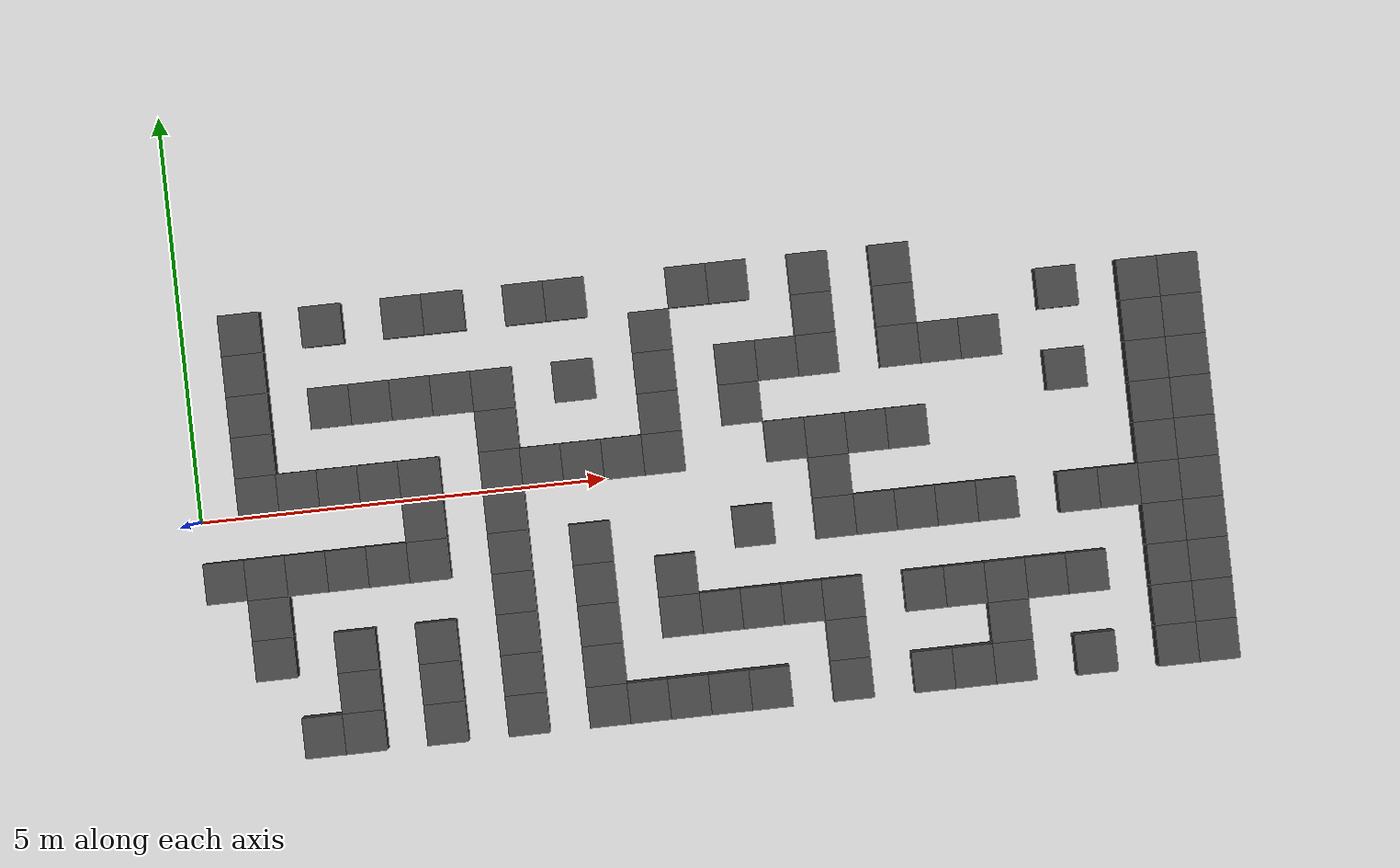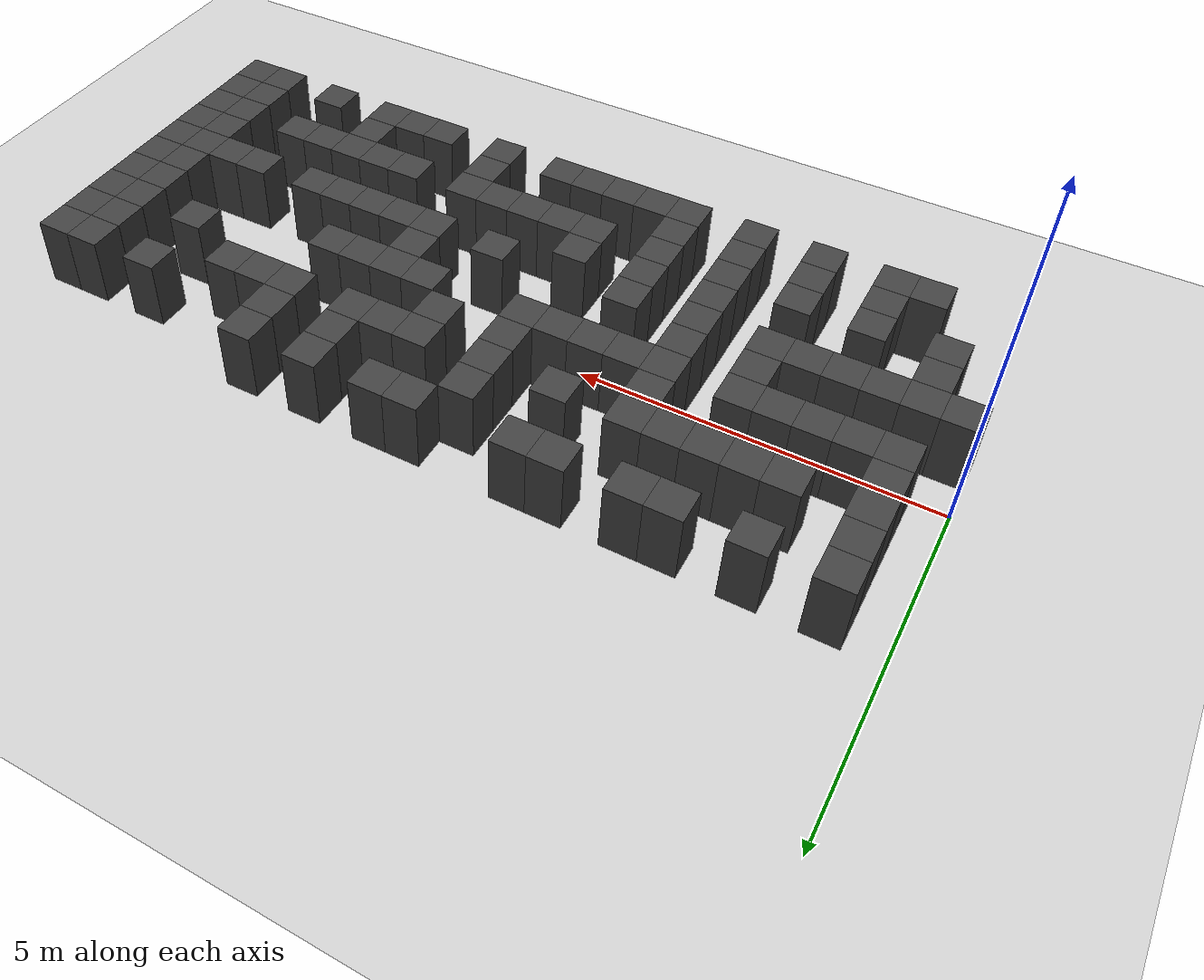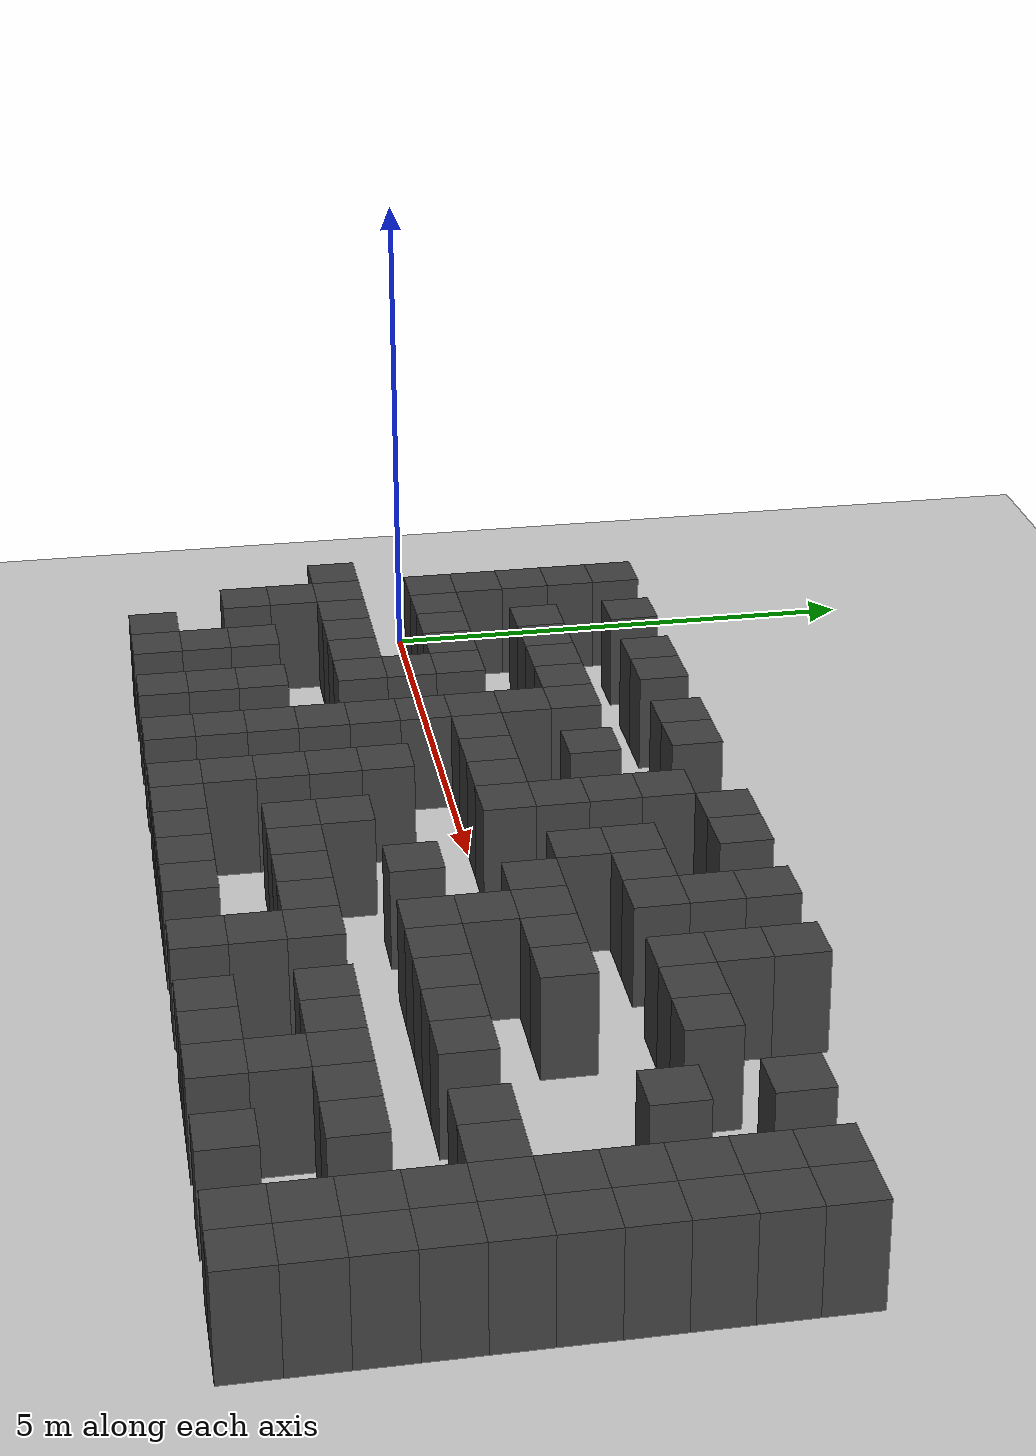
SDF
<sdf version="1.7">
 <world name="map_16884">
  <model name="ground_plane">
   <static>true</static>
   <link name="link">
    <collision name="collision">
     <geometry><plane><normal>0 0 1</normal><size>200 200</size></plane></geometry>
    </collision>
    <visual name="visual">
     <geometry><plane><normal>0 0 1</normal><size>200 200</size></plane></geometry>
     <material><ambient>0.8 0.8 0.8 1</ambient><diffuse>0.8 0.8 0.8 1</diffuse></material>
    </visual>
   </link>
  </model>
  <model name="maze_environment">
   <static>true</static>
   <link name="wall_515">
    <pose>0.750 2.250 0.500 0 0 0</pose>
    <collision name="col"><geometry><box><size>0.5 0.5 1.0</size></box></geometry></collision>
    <visual name="vis">
     <geometry><box><size>0.5 0.5 1.0</size></box></geometry>
     <material><ambient>0.15 0.15 0.15 1</ambient><diffuse>0.25 0.25 0.25 1</diffuse></material>
    </visual>
   </link>
   <link name="wall_516">
    <pose>1.750 2.250 0.500 0 0 0</pose>
    <collision name="col"><geometry><box><size>0.5 0.5 1.0</size></box></geometry></collision>
    <visual name="vis">
     <geometry><box><size>0.5 0.5 1.0</size></box></geometry>
     <material><ambient>0.15 0.15 0.15 1</ambient><diffuse>0.25 0.25 0.25 1</diffuse></material>
    </visual>
   </link>
   <link name="wall_517">
    <pose>2.750 2.250 0.500 0 0 0</pose>
    <collision name="col"><geometry><box><size>0.5 0.5 1.0</size></box></geometry></collision>
    <visual name="vis">
     <geometry><box><size>0.5 0.5 1.0</size></box></geometry>
     <material><ambient>0.15 0.15 0.15 1</ambient><diffuse>0.25 0.25 0.25 1</diffuse></material>
    </visual>
   </link>
   <link name="wall_518">
    <pose>3.250 2.250 0.500 0 0 0</pose>
    <collision name="col"><geometry><box><size>0.5 0.5 1.0</size></box></geometry></collision>
    <visual name="vis">
     <geometry><box><size>0.5 0.5 1.0</size></box></geometry>
     <material><ambient>0.15 0.15 0.15 1</ambient><diffuse>0.25 0.25 0.25 1</diffuse></material>
    </visual>
   </link>
   <link name="wall_519">
    <pose>4.250 2.250 0.500 0 0 0</pose>
    <collision name="col"><geometry><box><size>0.5 0.5 1.0</size></box></geometry></collision>
    <visual name="vis">
     <geometry><box><size>0.5 0.5 1.0</size></box></geometry>
     <material><ambient>0.15 0.15 0.15 1</ambient><diffuse>0.25 0.25 0.25 1</diffuse></material>
    </visual>
   </link>
   <link name="wall_520">
    <pose>4.750 2.250 0.500 0 0 0</pose>
    <collision name="col"><geometry><box><size>0.5 0.5 1.0</size></box></geometry></collision>
    <visual name="vis">
     <geometry><box><size>0.5 0.5 1.0</size></box></geometry>
     <material><ambient>0.15 0.15 0.15 1</ambient><diffuse>0.25 0.25 0.25 1</diffuse></material>
    </visual>
   </link>
   <link name="wall_521">
    <pose>6.250 2.250 0.500 0 0 0</pose>
    <collision name="col"><geometry><box><size>0.5 0.5 1.0</size></box></geometry></collision>
    <visual name="vis">
     <geometry><box><size>0.5 0.5 1.0</size></box></geometry>
     <material><ambient>0.15 0.15 0.15 1</ambient><diffuse>0.25 0.25 0.25 1</diffuse></material>
    </visual>
   </link>
   <link name="wall_522">
    <pose>6.750 2.250 0.500 0 0 0</pose>
    <collision name="col"><geometry><box><size>0.5 0.5 1.0</size></box></geometry></collision>
    <visual name="vis">
     <geometry><box><size>0.5 0.5 1.0</size></box></geometry>
     <material><ambient>0.15 0.15 0.15 1</ambient><diffuse>0.25 0.25 0.25 1</diffuse></material>
    </visual>
   </link>
   <link name="wall_523">
    <pose>7.750 2.250 0.500 0 0 0</pose>
    <collision name="col"><geometry><box><size>0.5 0.5 1.0</size></box></geometry></collision>
    <visual name="vis">
     <geometry><box><size>0.5 0.5 1.0</size></box></geometry>
     <material><ambient>0.15 0.15 0.15 1</ambient><diffuse>0.25 0.25 0.25 1</diffuse></material>
    </visual>
   </link>
   <link name="wall_524">
    <pose>8.750 2.250 0.500 0 0 0</pose>
    <collision name="col"><geometry><box><size>0.5 0.5 1.0</size></box></geometry></collision>
    <visual name="vis">
     <geometry><box><size>0.5 0.5 1.0</size></box></geometry>
     <material><ambient>0.15 0.15 0.15 1</ambient><diffuse>0.25 0.25 0.25 1</diffuse></material>
    </visual>
   </link>
   <link name="wall_538">
    <pose>0.750 1.750 0.500 0 0 0</pose>
    <collision name="col"><geometry><box><size>0.5 0.5 1.0</size></box></geometry></collision>
    <visual name="vis">
     <geometry><box><size>0.5 0.5 1.0</size></box></geometry>
     <material><ambient>0.15 0.15 0.15 1</ambient><diffuse>0.25 0.25 0.25 1</diffuse></material>
    </visual>
   </link>
   <link name="wall_539">
    <pose>5.750 1.750 0.500 0 0 0</pose>
    <collision name="col"><geometry><box><size>0.5 0.5 1.0</size></box></geometry></collision>
    <visual name="vis">
     <geometry><box><size>0.5 0.5 1.0</size></box></geometry>
     <material><ambient>0.15 0.15 0.15 1</ambient><diffuse>0.25 0.25 0.25 1</diffuse></material>
    </visual>
   </link>
   <link name="wall_540">
    <pose>7.750 1.750 0.500 0 0 0</pose>
    <collision name="col"><geometry><box><size>0.5 0.5 1.0</size></box></geometry></collision>
    <visual name="vis">
     <geometry><box><size>0.5 0.5 1.0</size></box></geometry>
     <material><ambient>0.15 0.15 0.15 1</ambient><diffuse>0.25 0.25 0.25 1</diffuse></material>
    </visual>
   </link>
   <link name="wall_541">
    <pose>8.750 1.750 0.500 0 0 0</pose>
    <collision name="col"><geometry><box><size>0.5 0.5 1.0</size></box></geometry></collision>
    <visual name="vis">
     <geometry><box><size>0.5 0.5 1.0</size></box></geometry>
     <material><ambient>0.15 0.15 0.15 1</ambient><diffuse>0.25 0.25 0.25 1</diffuse></material>
    </visual>
   </link>
   <link name="wall_542">
    <pose>10.750 1.750 0.500 0 0 0</pose>
    <collision name="col"><geometry><box><size>0.5 0.5 1.0</size></box></geometry></collision>
    <visual name="vis">
     <geometry><box><size>0.5 0.5 1.0</size></box></geometry>
     <material><ambient>0.15 0.15 0.15 1</ambient><diffuse>0.25 0.25 0.25 1</diffuse></material>
    </visual>
   </link>
   <link name="wall_543">
    <pose>11.750 1.750 0.500 0 0 0</pose>
    <collision name="col"><geometry><box><size>0.5 0.5 1.0</size></box></geometry></collision>
    <visual name="vis">
     <geometry><box><size>0.5 0.5 1.0</size></box></geometry>
     <material><ambient>0.15 0.15 0.15 1</ambient><diffuse>0.25 0.25 0.25 1</diffuse></material>
    </visual>
   </link>
   <link name="wall_544">
    <pose>12.250 1.750 0.500 0 0 0</pose>
    <collision name="col"><geometry><box><size>0.5 0.5 1.0</size></box></geometry></collision>
    <visual name="vis">
     <geometry><box><size>0.5 0.5 1.0</size></box></geometry>
     <material><ambient>0.15 0.15 0.15 1</ambient><diffuse>0.25 0.25 0.25 1</diffuse></material>
    </visual>
   </link>
   <link name="wall_560">
    <pose>0.750 1.250 0.500 0 0 0</pose>
    <collision name="col"><geometry><box><size>0.5 0.5 1.0</size></box></geometry></collision>
    <visual name="vis">
     <geometry><box><size>0.5 0.5 1.0</size></box></geometry>
     <material><ambient>0.15 0.15 0.15 1</ambient><diffuse>0.25 0.25 0.25 1</diffuse></material>
    </visual>
   </link>
   <link name="wall_561">
    <pose>1.750 1.250 0.500 0 0 0</pose>
    <collision name="col"><geometry><box><size>0.5 0.5 1.0</size></box></geometry></collision>
    <visual name="vis">
     <geometry><box><size>0.5 0.5 1.0</size></box></geometry>
     <material><ambient>0.15 0.15 0.15 1</ambient><diffuse>0.25 0.25 0.25 1</diffuse></material>
    </visual>
   </link>
   <link name="wall_562">
    <pose>2.250 1.250 0.500 0 0 0</pose>
    <collision name="col"><geometry><box><size>0.5 0.5 1.0</size></box></geometry></collision>
    <visual name="vis">
     <geometry><box><size>0.5 0.5 1.0</size></box></geometry>
     <material><ambient>0.15 0.15 0.15 1</ambient><diffuse>0.25 0.25 0.25 1</diffuse></material>
    </visual>
   </link>
   <link name="wall_563">
    <pose>2.750 1.250 0.500 0 0 0</pose>
    <collision name="col"><geometry><box><size>0.5 0.5 1.0</size></box></geometry></collision>
    <visual name="vis">
     <geometry><box><size>0.5 0.5 1.0</size></box></geometry>
     <material><ambient>0.15 0.15 0.15 1</ambient><diffuse>0.25 0.25 0.25 1</diffuse></material>
    </visual>
   </link>
   <link name="wall_564">
    <pose>3.250 1.250 0.500 0 0 0</pose>
    <collision name="col"><geometry><box><size>0.5 0.5 1.0</size></box></geometry></collision>
    <visual name="vis">
     <geometry><box><size>0.5 0.5 1.0</size></box></geometry>
     <material><ambient>0.15 0.15 0.15 1</ambient><diffuse>0.25 0.25 0.25 1</diffuse></material>
    </visual>
   </link>
   <link name="wall_565">
    <pose>3.750 1.250 0.500 0 0 0</pose>
    <collision name="col"><geometry><box><size>0.5 0.5 1.0</size></box></geometry></collision>
    <visual name="vis">
     <geometry><box><size>0.5 0.5 1.0</size></box></geometry>
     <material><ambient>0.15 0.15 0.15 1</ambient><diffuse>0.25 0.25 0.25 1</diffuse></material>
    </visual>
   </link>
   <link name="wall_566">
    <pose>4.750 1.250 0.500 0 0 0</pose>
    <collision name="col"><geometry><box><size>0.5 0.5 1.0</size></box></geometry></collision>
    <visual name="vis">
     <geometry><box><size>0.5 0.5 1.0</size></box></geometry>
     <material><ambient>0.15 0.15 0.15 1</ambient><diffuse>0.25 0.25 0.25 1</diffuse></material>
    </visual>
   </link>
   <link name="wall_567">
    <pose>5.750 1.250 0.500 0 0 0</pose>
    <collision name="col"><geometry><box><size>0.5 0.5 1.0</size></box></geometry></collision>
    <visual name="vis">
     <geometry><box><size>0.5 0.5 1.0</size></box></geometry>
     <material><ambient>0.15 0.15 0.15 1</ambient><diffuse>0.25 0.25 0.25 1</diffuse></material>
    </visual>
   </link>
   <link name="wall_568">
    <pose>6.750 1.250 0.500 0 0 0</pose>
    <collision name="col"><geometry><box><size>0.5 0.5 1.0</size></box></geometry></collision>
    <visual name="vis">
     <geometry><box><size>0.5 0.5 1.0</size></box></geometry>
     <material><ambient>0.15 0.15 0.15 1</ambient><diffuse>0.25 0.25 0.25 1</diffuse></material>
    </visual>
   </link>
   <link name="wall_569">
    <pose>7.250 1.250 0.500 0 0 0</pose>
    <collision name="col"><geometry><box><size>0.5 0.5 1.0</size></box></geometry></collision>
    <visual name="vis">
     <geometry><box><size>0.5 0.5 1.0</size></box></geometry>
     <material><ambient>0.15 0.15 0.15 1</ambient><diffuse>0.25 0.25 0.25 1</diffuse></material>
    </visual>
   </link>
   <link name="wall_570">
    <pose>7.750 1.250 0.500 0 0 0</pose>
    <collision name="col"><geometry><box><size>0.5 0.5 1.0</size></box></geometry></collision>
    <visual name="vis">
     <geometry><box><size>0.5 0.5 1.0</size></box></geometry>
     <material><ambient>0.15 0.15 0.15 1</ambient><diffuse>0.25 0.25 0.25 1</diffuse></material>
    </visual>
   </link>
   <link name="wall_571">
    <pose>8.750 1.250 0.500 0 0 0</pose>
    <collision name="col"><geometry><box><size>0.5 0.5 1.0</size></box></geometry></collision>
    <visual name="vis">
     <geometry><box><size>0.5 0.5 1.0</size></box></geometry>
     <material><ambient>0.15 0.15 0.15 1</ambient><diffuse>0.25 0.25 0.25 1</diffuse></material>
    </visual>
   </link>
   <link name="wall_572">
    <pose>9.250 1.250 0.500 0 0 0</pose>
    <collision name="col"><geometry><box><size>0.5 0.5 1.0</size></box></geometry></collision>
    <visual name="vis">
     <geometry><box><size>0.5 0.5 1.0</size></box></geometry>
     <material><ambient>0.15 0.15 0.15 1</ambient><diffuse>0.25 0.25 0.25 1</diffuse></material>
    </visual>
   </link>
   <link name="wall_573">
    <pose>9.750 1.250 0.500 0 0 0</pose>
    <collision name="col"><geometry><box><size>0.5 0.5 1.0</size></box></geometry></collision>
    <visual name="vis">
     <geometry><box><size>0.5 0.5 1.0</size></box></geometry>
     <material><ambient>0.15 0.15 0.15 1</ambient><diffuse>0.25 0.25 0.25 1</diffuse></material>
    </visual>
   </link>
   <link name="wall_574">
    <pose>11.750 1.250 0.500 0 0 0</pose>
    <collision name="col"><geometry><box><size>0.5 0.5 1.0</size></box></geometry></collision>
    <visual name="vis">
     <geometry><box><size>0.5 0.5 1.0</size></box></geometry>
     <material><ambient>0.15 0.15 0.15 1</ambient><diffuse>0.25 0.25 0.25 1</diffuse></material>
    </visual>
   </link>
   <link name="wall_575">
    <pose>12.250 1.250 0.500 0 0 0</pose>
    <collision name="col"><geometry><box><size>0.5 0.5 1.0</size></box></geometry></collision>
    <visual name="vis">
     <geometry><box><size>0.5 0.5 1.0</size></box></geometry>
     <material><ambient>0.15 0.15 0.15 1</ambient><diffuse>0.25 0.25 0.25 1</diffuse></material>
    </visual>
   </link>
   <link name="wall_583">
    <pose>0.750 0.750 0.500 0 0 0</pose>
    <collision name="col"><geometry><box><size>0.5 0.5 1.0</size></box></geometry></collision>
    <visual name="vis">
     <geometry><box><size>0.5 0.5 1.0</size></box></geometry>
     <material><ambient>0.15 0.15 0.15 1</ambient><diffuse>0.25 0.25 0.25 1</diffuse></material>
    </visual>
   </link>
   <link name="wall_584">
    <pose>3.750 0.750 0.500 0 0 0</pose>
    <collision name="col"><geometry><box><size>0.5 0.5 1.0</size></box></geometry></collision>
    <visual name="vis">
     <geometry><box><size>0.5 0.5 1.0</size></box></geometry>
     <material><ambient>0.15 0.15 0.15 1</ambient><diffuse>0.25 0.25 0.25 1</diffuse></material>
    </visual>
   </link>
   <link name="wall_585">
    <pose>5.750 0.750 0.500 0 0 0</pose>
    <collision name="col"><geometry><box><size>0.5 0.5 1.0</size></box></geometry></collision>
    <visual name="vis">
     <geometry><box><size>0.5 0.5 1.0</size></box></geometry>
     <material><ambient>0.15 0.15 0.15 1</ambient><diffuse>0.25 0.25 0.25 1</diffuse></material>
    </visual>
   </link>
   <link name="wall_586">
    <pose>6.750 0.750 0.500 0 0 0</pose>
    <collision name="col"><geometry><box><size>0.5 0.5 1.0</size></box></geometry></collision>
    <visual name="vis">
     <geometry><box><size>0.5 0.5 1.0</size></box></geometry>
     <material><ambient>0.15 0.15 0.15 1</ambient><diffuse>0.25 0.25 0.25 1</diffuse></material>
    </visual>
   </link>
   <link name="wall_587">
    <pose>10.750 0.750 0.500 0 0 0</pose>
    <collision name="col"><geometry><box><size>0.5 0.5 1.0</size></box></geometry></collision>
    <visual name="vis">
     <geometry><box><size>0.5 0.5 1.0</size></box></geometry>
     <material><ambient>0.15 0.15 0.15 1</ambient><diffuse>0.25 0.25 0.25 1</diffuse></material>
    </visual>
   </link>
   <link name="wall_588">
    <pose>11.750 0.750 0.500 0 0 0</pose>
    <collision name="col"><geometry><box><size>0.5 0.5 1.0</size></box></geometry></collision>
    <visual name="vis">
     <geometry><box><size>0.5 0.5 1.0</size></box></geometry>
     <material><ambient>0.15 0.15 0.15 1</ambient><diffuse>0.25 0.25 0.25 1</diffuse></material>
    </visual>
   </link>
   <link name="wall_589">
    <pose>12.250 0.750 0.500 0 0 0</pose>
    <collision name="col"><geometry><box><size>0.5 0.5 1.0</size></box></geometry></collision>
    <visual name="vis">
     <geometry><box><size>0.5 0.5 1.0</size></box></geometry>
     <material><ambient>0.15 0.15 0.15 1</ambient><diffuse>0.25 0.25 0.25 1</diffuse></material>
    </visual>
   </link>
   <link name="wall_604">
    <pose>0.750 0.250 0.500 0 0 0</pose>
    <collision name="col"><geometry><box><size>0.5 0.5 1.0</size></box></geometry></collision>
    <visual name="vis">
     <geometry><box><size>0.5 0.5 1.0</size></box></geometry>
     <material><ambient>0.15 0.15 0.15 1</ambient><diffuse>0.25 0.25 0.25 1</diffuse></material>
    </visual>
   </link>
   <link name="wall_605">
    <pose>1.250 0.250 0.500 0 0 0</pose>
    <collision name="col"><geometry><box><size>0.5 0.5 1.0</size></box></geometry></collision>
    <visual name="vis">
     <geometry><box><size>0.5 0.5 1.0</size></box></geometry>
     <material><ambient>0.15 0.15 0.15 1</ambient><diffuse>0.25 0.25 0.25 1</diffuse></material>
    </visual>
   </link>
   <link name="wall_606">
    <pose>1.750 0.250 0.500 0 0 0</pose>
    <collision name="col"><geometry><box><size>0.5 0.5 1.0</size></box></geometry></collision>
    <visual name="vis">
     <geometry><box><size>0.5 0.5 1.0</size></box></geometry>
     <material><ambient>0.15 0.15 0.15 1</ambient><diffuse>0.25 0.25 0.25 1</diffuse></material>
    </visual>
   </link>
   <link name="wall_607">
    <pose>2.250 0.250 0.500 0 0 0</pose>
    <collision name="col"><geometry><box><size>0.5 0.5 1.0</size></box></geometry></collision>
    <visual name="vis">
     <geometry><box><size>0.5 0.5 1.0</size></box></geometry>
     <material><ambient>0.15 0.15 0.15 1</ambient><diffuse>0.25 0.25 0.25 1</diffuse></material>
    </visual>
   </link>
   <link name="wall_608">
    <pose>2.750 0.250 0.500 0 0 0</pose>
    <collision name="col"><geometry><box><size>0.5 0.5 1.0</size></box></geometry></collision>
    <visual name="vis">
     <geometry><box><size>0.5 0.5 1.0</size></box></geometry>
     <material><ambient>0.15 0.15 0.15 1</ambient><diffuse>0.25 0.25 0.25 1</diffuse></material>
    </visual>
   </link>
   <link name="wall_609">
    <pose>3.750 0.250 0.500 0 0 0</pose>
    <collision name="col"><geometry><box><size>0.5 0.5 1.0</size></box></geometry></collision>
    <visual name="vis">
     <geometry><box><size>0.5 0.5 1.0</size></box></geometry>
     <material><ambient>0.15 0.15 0.15 1</ambient><diffuse>0.25 0.25 0.25 1</diffuse></material>
    </visual>
   </link>
   <link name="wall_610">
    <pose>4.250 0.250 0.500 0 0 0</pose>
    <collision name="col"><geometry><box><size>0.5 0.5 1.0</size></box></geometry></collision>
    <visual name="vis">
     <geometry><box><size>0.5 0.5 1.0</size></box></geometry>
     <material><ambient>0.15 0.15 0.15 1</ambient><diffuse>0.25 0.25 0.25 1</diffuse></material>
    </visual>
   </link>
   <link name="wall_611">
    <pose>4.750 0.250 0.500 0 0 0</pose>
    <collision name="col"><geometry><box><size>0.5 0.5 1.0</size></box></geometry></collision>
    <visual name="vis">
     <geometry><box><size>0.5 0.5 1.0</size></box></geometry>
     <material><ambient>0.15 0.15 0.15 1</ambient><diffuse>0.25 0.25 0.25 1</diffuse></material>
    </visual>
   </link>
   <link name="wall_612">
    <pose>5.250 0.250 0.500 0 0 0</pose>
    <collision name="col"><geometry><box><size>0.5 0.5 1.0</size></box></geometry></collision>
    <visual name="vis">
     <geometry><box><size>0.5 0.5 1.0</size></box></geometry>
     <material><ambient>0.15 0.15 0.15 1</ambient><diffuse>0.25 0.25 0.25 1</diffuse></material>
    </visual>
   </link>
   <link name="wall_613">
    <pose>5.750 0.250 0.500 0 0 0</pose>
    <collision name="col"><geometry><box><size>0.5 0.5 1.0</size></box></geometry></collision>
    <visual name="vis">
     <geometry><box><size>0.5 0.5 1.0</size></box></geometry>
     <material><ambient>0.15 0.15 0.15 1</ambient><diffuse>0.25 0.25 0.25 1</diffuse></material>
    </visual>
   </link>
   <link name="wall_614">
    <pose>7.250 0.250 0.500 0 0 0</pose>
    <collision name="col"><geometry><box><size>0.5 0.5 1.0</size></box></geometry></collision>
    <visual name="vis">
     <geometry><box><size>0.5 0.5 1.0</size></box></geometry>
     <material><ambient>0.15 0.15 0.15 1</ambient><diffuse>0.25 0.25 0.25 1</diffuse></material>
    </visual>
   </link>
   <link name="wall_615">
    <pose>7.750 0.250 0.500 0 0 0</pose>
    <collision name="col"><geometry><box><size>0.5 0.5 1.0</size></box></geometry></collision>
    <visual name="vis">
     <geometry><box><size>0.5 0.5 1.0</size></box></geometry>
     <material><ambient>0.15 0.15 0.15 1</ambient><diffuse>0.25 0.25 0.25 1</diffuse></material>
    </visual>
   </link>
   <link name="wall_616">
    <pose>8.250 0.250 0.500 0 0 0</pose>
    <collision name="col"><geometry><box><size>0.5 0.5 1.0</size></box></geometry></collision>
    <visual name="vis">
     <geometry><box><size>0.5 0.5 1.0</size></box></geometry>
     <material><ambient>0.15 0.15 0.15 1</ambient><diffuse>0.25 0.25 0.25 1</diffuse></material>
    </visual>
   </link>
   <link name="wall_617">
    <pose>8.750 0.250 0.500 0 0 0</pose>
    <collision name="col"><geometry><box><size>0.5 0.5 1.0</size></box></geometry></collision>
    <visual name="vis">
     <geometry><box><size>0.5 0.5 1.0</size></box></geometry>
     <material><ambient>0.15 0.15 0.15 1</ambient><diffuse>0.25 0.25 0.25 1</diffuse></material>
    </visual>
   </link>
   <link name="wall_618">
    <pose>11.750 0.250 0.500 0 0 0</pose>
    <collision name="col"><geometry><box><size>0.5 0.5 1.0</size></box></geometry></collision>
    <visual name="vis">
     <geometry><box><size>0.5 0.5 1.0</size></box></geometry>
     <material><ambient>0.15 0.15 0.15 1</ambient><diffuse>0.25 0.25 0.25 1</diffuse></material>
    </visual>
   </link>
   <link name="wall_619">
    <pose>12.250 0.250 0.500 0 0 0</pose>
    <collision name="col"><geometry><box><size>0.5 0.5 1.0</size></box></geometry></collision>
    <visual name="vis">
     <geometry><box><size>0.5 0.5 1.0</size></box></geometry>
     <material><ambient>0.15 0.15 0.15 1</ambient><diffuse>0.25 0.25 0.25 1</diffuse></material>
    </visual>
   </link>
   <link name="wall_626">
    <pose>2.750 -0.250 0.500 0 0 0</pose>
    <collision name="col"><geometry><box><size>0.5 0.5 1.0</size></box></geometry></collision>
    <visual name="vis">
     <geometry><box><size>0.5 0.5 1.0</size></box></geometry>
     <material><ambient>0.15 0.15 0.15 1</ambient><diffuse>0.25 0.25 0.25 1</diffuse></material>
    </visual>
   </link>
   <link name="wall_627">
    <pose>3.750 -0.250 0.500 0 0 0</pose>
    <collision name="col"><geometry><box><size>0.5 0.5 1.0</size></box></geometry></collision>
    <visual name="vis">
     <geometry><box><size>0.5 0.5 1.0</size></box></geometry>
     <material><ambient>0.15 0.15 0.15 1</ambient><diffuse>0.25 0.25 0.25 1</diffuse></material>
    </visual>
   </link>
   <link name="wall_628">
    <pose>7.750 -0.250 0.500 0 0 0</pose>
    <collision name="col"><geometry><box><size>0.5 0.5 1.0</size></box></geometry></collision>
    <visual name="vis">
     <geometry><box><size>0.5 0.5 1.0</size></box></geometry>
     <material><ambient>0.15 0.15 0.15 1</ambient><diffuse>0.25 0.25 0.25 1</diffuse></material>
    </visual>
   </link>
   <link name="wall_629">
    <pose>11.750 -0.250 0.500 0 0 0</pose>
    <collision name="col"><geometry><box><size>0.5 0.5 1.0</size></box></geometry></collision>
    <visual name="vis">
     <geometry><box><size>0.5 0.5 1.0</size></box></geometry>
     <material><ambient>0.15 0.15 0.15 1</ambient><diffuse>0.25 0.25 0.25 1</diffuse></material>
    </visual>
   </link>
   <link name="wall_630">
    <pose>12.250 -0.250 0.500 0 0 0</pose>
    <collision name="col"><geometry><box><size>0.5 0.5 1.0</size></box></geometry></collision>
    <visual name="vis">
     <geometry><box><size>0.5 0.5 1.0</size></box></geometry>
     <material><ambient>0.15 0.15 0.15 1</ambient><diffuse>0.25 0.25 0.25 1</diffuse></material>
    </visual>
   </link>
   <link name="wall_647">
    <pose>0.250 -0.750 0.500 0 0 0</pose>
    <collision name="col"><geometry><box><size>0.5 0.5 1.0</size></box></geometry></collision>
    <visual name="vis">
     <geometry><box><size>0.5 0.5 1.0</size></box></geometry>
     <material><ambient>0.15 0.15 0.15 1</ambient><diffuse>0.25 0.25 0.25 1</diffuse></material>
    </visual>
   </link>
   <link name="wall_648">
    <pose>0.750 -0.750 0.500 0 0 0</pose>
    <collision name="col"><geometry><box><size>0.5 0.5 1.0</size></box></geometry></collision>
    <visual name="vis">
     <geometry><box><size>0.5 0.5 1.0</size></box></geometry>
     <material><ambient>0.15 0.15 0.15 1</ambient><diffuse>0.25 0.25 0.25 1</diffuse></material>
    </visual>
   </link>
   <link name="wall_649">
    <pose>1.250 -0.750 0.500 0 0 0</pose>
    <collision name="col"><geometry><box><size>0.5 0.5 1.0</size></box></geometry></collision>
    <visual name="vis">
     <geometry><box><size>0.5 0.5 1.0</size></box></geometry>
     <material><ambient>0.15 0.15 0.15 1</ambient><diffuse>0.25 0.25 0.25 1</diffuse></material>
    </visual>
   </link>
   <link name="wall_650">
    <pose>1.750 -0.750 0.500 0 0 0</pose>
    <collision name="col"><geometry><box><size>0.5 0.5 1.0</size></box></geometry></collision>
    <visual name="vis">
     <geometry><box><size>0.5 0.5 1.0</size></box></geometry>
     <material><ambient>0.15 0.15 0.15 1</ambient><diffuse>0.25 0.25 0.25 1</diffuse></material>
    </visual>
   </link>
   <link name="wall_651">
    <pose>2.250 -0.750 0.500 0 0 0</pose>
    <collision name="col"><geometry><box><size>0.5 0.5 1.0</size></box></geometry></collision>
    <visual name="vis">
     <geometry><box><size>0.5 0.5 1.0</size></box></geometry>
     <material><ambient>0.15 0.15 0.15 1</ambient><diffuse>0.25 0.25 0.25 1</diffuse></material>
    </visual>
   </link>
   <link name="wall_652">
    <pose>2.750 -0.750 0.500 0 0 0</pose>
    <collision name="col"><geometry><box><size>0.5 0.5 1.0</size></box></geometry></collision>
    <visual name="vis">
     <geometry><box><size>0.5 0.5 1.0</size></box></geometry>
     <material><ambient>0.15 0.15 0.15 1</ambient><diffuse>0.25 0.25 0.25 1</diffuse></material>
    </visual>
   </link>
   <link name="wall_653">
    <pose>3.750 -0.750 0.500 0 0 0</pose>
    <collision name="col"><geometry><box><size>0.5 0.5 1.0</size></box></geometry></collision>
    <visual name="vis">
     <geometry><box><size>0.5 0.5 1.0</size></box></geometry>
     <material><ambient>0.15 0.15 0.15 1</ambient><diffuse>0.25 0.25 0.25 1</diffuse></material>
    </visual>
   </link>
   <link name="wall_654">
    <pose>4.750 -0.750 0.500 0 0 0</pose>
    <collision name="col"><geometry><box><size>0.5 0.5 1.0</size></box></geometry></collision>
    <visual name="vis">
     <geometry><box><size>0.5 0.5 1.0</size></box></geometry>
     <material><ambient>0.15 0.15 0.15 1</ambient><diffuse>0.25 0.25 0.25 1</diffuse></material>
    </visual>
   </link>
   <link name="wall_655">
    <pose>6.750 -0.750 0.500 0 0 0</pose>
    <collision name="col"><geometry><box><size>0.5 0.5 1.0</size></box></geometry></collision>
    <visual name="vis">
     <geometry><box><size>0.5 0.5 1.0</size></box></geometry>
     <material><ambient>0.15 0.15 0.15 1</ambient><diffuse>0.25 0.25 0.25 1</diffuse></material>
    </visual>
   </link>
   <link name="wall_656">
    <pose>7.750 -0.750 0.500 0 0 0</pose>
    <collision name="col"><geometry><box><size>0.5 0.5 1.0</size></box></geometry></collision>
    <visual name="vis">
     <geometry><box><size>0.5 0.5 1.0</size></box></geometry>
     <material><ambient>0.15 0.15 0.15 1</ambient><diffuse>0.25 0.25 0.25 1</diffuse></material>
    </visual>
   </link>
   <link name="wall_657">
    <pose>8.250 -0.750 0.500 0 0 0</pose>
    <collision name="col"><geometry><box><size>0.5 0.5 1.0</size></box></geometry></collision>
    <visual name="vis">
     <geometry><box><size>0.5 0.5 1.0</size></box></geometry>
     <material><ambient>0.15 0.15 0.15 1</ambient><diffuse>0.25 0.25 0.25 1</diffuse></material>
    </visual>
   </link>
   <link name="wall_658">
    <pose>8.750 -0.750 0.500 0 0 0</pose>
    <collision name="col"><geometry><box><size>0.5 0.5 1.0</size></box></geometry></collision>
    <visual name="vis">
     <geometry><box><size>0.5 0.5 1.0</size></box></geometry>
     <material><ambient>0.15 0.15 0.15 1</ambient><diffuse>0.25 0.25 0.25 1</diffuse></material>
    </visual>
   </link>
   <link name="wall_659">
    <pose>9.250 -0.750 0.500 0 0 0</pose>
    <collision name="col"><geometry><box><size>0.5 0.5 1.0</size></box></geometry></collision>
    <visual name="vis">
     <geometry><box><size>0.5 0.5 1.0</size></box></geometry>
     <material><ambient>0.15 0.15 0.15 1</ambient><diffuse>0.25 0.25 0.25 1</diffuse></material>
    </visual>
   </link>
   <link name="wall_660">
    <pose>9.750 -0.750 0.500 0 0 0</pose>
    <collision name="col"><geometry><box><size>0.5 0.5 1.0</size></box></geometry></collision>
    <visual name="vis">
     <geometry><box><size>0.5 0.5 1.0</size></box></geometry>
     <material><ambient>0.15 0.15 0.15 1</ambient><diffuse>0.25 0.25 0.25 1</diffuse></material>
    </visual>
   </link>
   <link name="wall_661">
    <pose>10.750 -0.750 0.500 0 0 0</pose>
    <collision name="col"><geometry><box><size>0.5 0.5 1.0</size></box></geometry></collision>
    <visual name="vis">
     <geometry><box><size>0.5 0.5 1.0</size></box></geometry>
     <material><ambient>0.15 0.15 0.15 1</ambient><diffuse>0.25 0.25 0.25 1</diffuse></material>
    </visual>
   </link>
   <link name="wall_662">
    <pose>11.250 -0.750 0.500 0 0 0</pose>
    <collision name="col"><geometry><box><size>0.5 0.5 1.0</size></box></geometry></collision>
    <visual name="vis">
     <geometry><box><size>0.5 0.5 1.0</size></box></geometry>
     <material><ambient>0.15 0.15 0.15 1</ambient><diffuse>0.25 0.25 0.25 1</diffuse></material>
    </visual>
   </link>
   <link name="wall_663">
    <pose>11.750 -0.750 0.500 0 0 0</pose>
    <collision name="col"><geometry><box><size>0.5 0.5 1.0</size></box></geometry></collision>
    <visual name="vis">
     <geometry><box><size>0.5 0.5 1.0</size></box></geometry>
     <material><ambient>0.15 0.15 0.15 1</ambient><diffuse>0.25 0.25 0.25 1</diffuse></material>
    </visual>
   </link>
   <link name="wall_664">
    <pose>12.250 -0.750 0.500 0 0 0</pose>
    <collision name="col"><geometry><box><size>0.5 0.5 1.0</size></box></geometry></collision>
    <visual name="vis">
     <geometry><box><size>0.5 0.5 1.0</size></box></geometry>
     <material><ambient>0.15 0.15 0.15 1</ambient><diffuse>0.25 0.25 0.25 1</diffuse></material>
    </visual>
   </link>
   <link name="wall_669">
    <pose>0.750 -1.250 0.500 0 0 0</pose>
    <collision name="col"><geometry><box><size>0.5 0.5 1.0</size></box></geometry></collision>
    <visual name="vis">
     <geometry><box><size>0.5 0.5 1.0</size></box></geometry>
     <material><ambient>0.15 0.15 0.15 1</ambient><diffuse>0.25 0.25 0.25 1</diffuse></material>
    </visual>
   </link>
   <link name="wall_670">
    <pose>3.750 -1.250 0.500 0 0 0</pose>
    <collision name="col"><geometry><box><size>0.5 0.5 1.0</size></box></geometry></collision>
    <visual name="vis">
     <geometry><box><size>0.5 0.5 1.0</size></box></geometry>
     <material><ambient>0.15 0.15 0.15 1</ambient><diffuse>0.25 0.25 0.25 1</diffuse></material>
    </visual>
   </link>
   <link name="wall_671">
    <pose>4.750 -1.250 0.500 0 0 0</pose>
    <collision name="col"><geometry><box><size>0.5 0.5 1.0</size></box></geometry></collision>
    <visual name="vis">
     <geometry><box><size>0.5 0.5 1.0</size></box></geometry>
     <material><ambient>0.15 0.15 0.15 1</ambient><diffuse>0.25 0.25 0.25 1</diffuse></material>
    </visual>
   </link>
   <link name="wall_672">
    <pose>5.750 -1.250 0.500 0 0 0</pose>
    <collision name="col"><geometry><box><size>0.5 0.5 1.0</size></box></geometry></collision>
    <visual name="vis">
     <geometry><box><size>0.5 0.5 1.0</size></box></geometry>
     <material><ambient>0.15 0.15 0.15 1</ambient><diffuse>0.25 0.25 0.25 1</diffuse></material>
    </visual>
   </link>
   <link name="wall_673">
    <pose>11.750 -1.250 0.500 0 0 0</pose>
    <collision name="col"><geometry><box><size>0.5 0.5 1.0</size></box></geometry></collision>
    <visual name="vis">
     <geometry><box><size>0.5 0.5 1.0</size></box></geometry>
     <material><ambient>0.15 0.15 0.15 1</ambient><diffuse>0.25 0.25 0.25 1</diffuse></material>
    </visual>
   </link>
   <link name="wall_674">
    <pose>12.250 -1.250 0.500 0 0 0</pose>
    <collision name="col"><geometry><box><size>0.5 0.5 1.0</size></box></geometry></collision>
    <visual name="vis">
     <geometry><box><size>0.5 0.5 1.0</size></box></geometry>
     <material><ambient>0.15 0.15 0.15 1</ambient><diffuse>0.25 0.25 0.25 1</diffuse></material>
    </visual>
   </link>
   <link name="wall_695">
    <pose>0.750 -1.750 0.500 0 0 0</pose>
    <collision name="col"><geometry><box><size>0.5 0.5 1.0</size></box></geometry></collision>
    <visual name="vis">
     <geometry><box><size>0.5 0.5 1.0</size></box></geometry>
     <material><ambient>0.15 0.15 0.15 1</ambient><diffuse>0.25 0.25 0.25 1</diffuse></material>
    </visual>
   </link>
   <link name="wall_696">
    <pose>1.750 -1.750 0.500 0 0 0</pose>
    <collision name="col"><geometry><box><size>0.5 0.5 1.0</size></box></geometry></collision>
    <visual name="vis">
     <geometry><box><size>0.5 0.5 1.0</size></box></geometry>
     <material><ambient>0.15 0.15 0.15 1</ambient><diffuse>0.25 0.25 0.25 1</diffuse></material>
    </visual>
   </link>
   <link name="wall_697">
    <pose>2.750 -1.750 0.500 0 0 0</pose>
    <collision name="col"><geometry><box><size>0.5 0.5 1.0</size></box></geometry></collision>
    <visual name="vis">
     <geometry><box><size>0.5 0.5 1.0</size></box></geometry>
     <material><ambient>0.15 0.15 0.15 1</ambient><diffuse>0.25 0.25 0.25 1</diffuse></material>
    </visual>
   </link>
   <link name="wall_698">
    <pose>3.750 -1.750 0.500 0 0 0</pose>
    <collision name="col"><geometry><box><size>0.5 0.5 1.0</size></box></geometry></collision>
    <visual name="vis">
     <geometry><box><size>0.5 0.5 1.0</size></box></geometry>
     <material><ambient>0.15 0.15 0.15 1</ambient><diffuse>0.25 0.25 0.25 1</diffuse></material>
    </visual>
   </link>
   <link name="wall_699">
    <pose>4.750 -1.750 0.500 0 0 0</pose>
    <collision name="col"><geometry><box><size>0.5 0.5 1.0</size></box></geometry></collision>
    <visual name="vis">
     <geometry><box><size>0.5 0.5 1.0</size></box></geometry>
     <material><ambient>0.15 0.15 0.15 1</ambient><diffuse>0.25 0.25 0.25 1</diffuse></material>
    </visual>
   </link>
   <link name="wall_700">
    <pose>5.750 -1.750 0.500 0 0 0</pose>
    <collision name="col"><geometry><box><size>0.5 0.5 1.0</size></box></geometry></collision>
    <visual name="vis">
     <geometry><box><size>0.5 0.5 1.0</size></box></geometry>
     <material><ambient>0.15 0.15 0.15 1</ambient><diffuse>0.25 0.25 0.25 1</diffuse></material>
    </visual>
   </link>
   <link name="wall_701">
    <pose>6.250 -1.750 0.500 0 0 0</pose>
    <collision name="col"><geometry><box><size>0.5 0.5 1.0</size></box></geometry></collision>
    <visual name="vis">
     <geometry><box><size>0.5 0.5 1.0</size></box></geometry>
     <material><ambient>0.15 0.15 0.15 1</ambient><diffuse>0.25 0.25 0.25 1</diffuse></material>
    </visual>
   </link>
   <link name="wall_702">
    <pose>6.750 -1.750 0.500 0 0 0</pose>
    <collision name="col"><geometry><box><size>0.5 0.5 1.0</size></box></geometry></collision>
    <visual name="vis">
     <geometry><box><size>0.5 0.5 1.0</size></box></geometry>
     <material><ambient>0.15 0.15 0.15 1</ambient><diffuse>0.25 0.25 0.25 1</diffuse></material>
    </visual>
   </link>
   <link name="wall_703">
    <pose>7.250 -1.750 0.500 0 0 0</pose>
    <collision name="col"><geometry><box><size>0.5 0.5 1.0</size></box></geometry></collision>
    <visual name="vis">
     <geometry><box><size>0.5 0.5 1.0</size></box></geometry>
     <material><ambient>0.15 0.15 0.15 1</ambient><diffuse>0.25 0.25 0.25 1</diffuse></material>
    </visual>
   </link>
   <link name="wall_704">
    <pose>7.750 -1.750 0.500 0 0 0</pose>
    <collision name="col"><geometry><box><size>0.5 0.5 1.0</size></box></geometry></collision>
    <visual name="vis">
     <geometry><box><size>0.5 0.5 1.0</size></box></geometry>
     <material><ambient>0.15 0.15 0.15 1</ambient><diffuse>0.25 0.25 0.25 1</diffuse></material>
    </visual>
   </link>
   <link name="wall_705">
    <pose>8.750 -1.750 0.500 0 0 0</pose>
    <collision name="col"><geometry><box><size>0.5 0.5 1.0</size></box></geometry></collision>
    <visual name="vis">
     <geometry><box><size>0.5 0.5 1.0</size></box></geometry>
     <material><ambient>0.15 0.15 0.15 1</ambient><diffuse>0.25 0.25 0.25 1</diffuse></material>
    </visual>
   </link>
   <link name="wall_706">
    <pose>9.250 -1.750 0.500 0 0 0</pose>
    <collision name="col"><geometry><box><size>0.5 0.5 1.0</size></box></geometry></collision>
    <visual name="vis">
     <geometry><box><size>0.5 0.5 1.0</size></box></geometry>
     <material><ambient>0.15 0.15 0.15 1</ambient><diffuse>0.25 0.25 0.25 1</diffuse></material>
    </visual>
   </link>
   <link name="wall_707">
    <pose>9.750 -1.750 0.500 0 0 0</pose>
    <collision name="col"><geometry><box><size>0.5 0.5 1.0</size></box></geometry></collision>
    <visual name="vis">
     <geometry><box><size>0.5 0.5 1.0</size></box></geometry>
     <material><ambient>0.15 0.15 0.15 1</ambient><diffuse>0.25 0.25 0.25 1</diffuse></material>
    </visual>
   </link>
   <link name="wall_708">
    <pose>10.250 -1.750 0.500 0 0 0</pose>
    <collision name="col"><geometry><box><size>0.5 0.5 1.0</size></box></geometry></collision>
    <visual name="vis">
     <geometry><box><size>0.5 0.5 1.0</size></box></geometry>
     <material><ambient>0.15 0.15 0.15 1</ambient><diffuse>0.25 0.25 0.25 1</diffuse></material>
    </visual>
   </link>
   <link name="wall_709">
    <pose>10.750 -1.750 0.500 0 0 0</pose>
    <collision name="col"><geometry><box><size>0.5 0.5 1.0</size></box></geometry></collision>
    <visual name="vis">
     <geometry><box><size>0.5 0.5 1.0</size></box></geometry>
     <material><ambient>0.15 0.15 0.15 1</ambient><diffuse>0.25 0.25 0.25 1</diffuse></material>
    </visual>
   </link>
   <link name="wall_710">
    <pose>11.750 -1.750 0.500 0 0 0</pose>
    <collision name="col"><geometry><box><size>0.5 0.5 1.0</size></box></geometry></collision>
    <visual name="vis">
     <geometry><box><size>0.5 0.5 1.0</size></box></geometry>
     <material><ambient>0.15 0.15 0.15 1</ambient><diffuse>0.25 0.25 0.25 1</diffuse></material>
    </visual>
   </link>
   <link name="wall_711">
    <pose>12.250 -1.750 0.500 0 0 0</pose>
    <collision name="col"><geometry><box><size>0.5 0.5 1.0</size></box></geometry></collision>
    <visual name="vis">
     <geometry><box><size>0.5 0.5 1.0</size></box></geometry>
     <material><ambient>0.15 0.15 0.15 1</ambient><diffuse>0.25 0.25 0.25 1</diffuse></material>
    </visual>
   </link>
   <link name="wall_716">
    <pose>1.750 -2.250 0.500 0 0 0</pose>
    <collision name="col"><geometry><box><size>0.5 0.5 1.0</size></box></geometry></collision>
    <visual name="vis">
     <geometry><box><size>0.5 0.5 1.0</size></box></geometry>
     <material><ambient>0.15 0.15 0.15 1</ambient><diffuse>0.25 0.25 0.25 1</diffuse></material>
    </visual>
   </link>
   <link name="wall_717">
    <pose>2.750 -2.250 0.500 0 0 0</pose>
    <collision name="col"><geometry><box><size>0.5 0.5 1.0</size></box></geometry></collision>
    <visual name="vis">
     <geometry><box><size>0.5 0.5 1.0</size></box></geometry>
     <material><ambient>0.15 0.15 0.15 1</ambient><diffuse>0.25 0.25 0.25 1</diffuse></material>
    </visual>
   </link>
   <link name="wall_718">
    <pose>3.750 -2.250 0.500 0 0 0</pose>
    <collision name="col"><geometry><box><size>0.5 0.5 1.0</size></box></geometry></collision>
    <visual name="vis">
     <geometry><box><size>0.5 0.5 1.0</size></box></geometry>
     <material><ambient>0.15 0.15 0.15 1</ambient><diffuse>0.25 0.25 0.25 1</diffuse></material>
    </visual>
   </link>
   <link name="wall_719">
    <pose>4.750 -2.250 0.500 0 0 0</pose>
    <collision name="col"><geometry><box><size>0.5 0.5 1.0</size></box></geometry></collision>
    <visual name="vis">
     <geometry><box><size>0.5 0.5 1.0</size></box></geometry>
     <material><ambient>0.15 0.15 0.15 1</ambient><diffuse>0.25 0.25 0.25 1</diffuse></material>
    </visual>
   </link>
   <link name="wall_720">
    <pose>7.750 -2.250 0.500 0 0 0</pose>
    <collision name="col"><geometry><box><size>0.5 0.5 1.0</size></box></geometry></collision>
    <visual name="vis">
     <geometry><box><size>0.5 0.5 1.0</size></box></geometry>
     <material><ambient>0.15 0.15 0.15 1</ambient><diffuse>0.25 0.25 0.25 1</diffuse></material>
    </visual>
   </link>
   <link name="wall_721">
    <pose>9.750 -2.250 0.500 0 0 0</pose>
    <collision name="col"><geometry><box><size>0.5 0.5 1.0</size></box></geometry></collision>
    <visual name="vis">
     <geometry><box><size>0.5 0.5 1.0</size></box></geometry>
     <material><ambient>0.15 0.15 0.15 1</ambient><diffuse>0.25 0.25 0.25 1</diffuse></material>
    </visual>
   </link>
   <link name="wall_722">
    <pose>11.750 -2.250 0.500 0 0 0</pose>
    <collision name="col"><geometry><box><size>0.5 0.5 1.0</size></box></geometry></collision>
    <visual name="vis">
     <geometry><box><size>0.5 0.5 1.0</size></box></geometry>
     <material><ambient>0.15 0.15 0.15 1</ambient><diffuse>0.25 0.25 0.25 1</diffuse></material>
    </visual>
   </link>
   <link name="wall_723">
    <pose>12.250 -2.250 0.500 0 0 0</pose>
    <collision name="col"><geometry><box><size>0.5 0.5 1.0</size></box></geometry></collision>
    <visual name="vis">
     <geometry><box><size>0.5 0.5 1.0</size></box></geometry>
     <material><ambient>0.15 0.15 0.15 1</ambient><diffuse>0.25 0.25 0.25 1</diffuse></material>
    </visual>
   </link>
   <link name="wall_744">
    <pose>1.250 -2.750 0.500 0 0 0</pose>
    <collision name="col"><geometry><box><size>0.5 0.5 1.0</size></box></geometry></collision>
    <visual name="vis">
     <geometry><box><size>0.5 0.5 1.0</size></box></geometry>
     <material><ambient>0.15 0.15 0.15 1</ambient><diffuse>0.25 0.25 0.25 1</diffuse></material>
    </visual>
   </link>
   <link name="wall_745">
    <pose>1.750 -2.750 0.500 0 0 0</pose>
    <collision name="col"><geometry><box><size>0.5 0.5 1.0</size></box></geometry></collision>
    <visual name="vis">
     <geometry><box><size>0.5 0.5 1.0</size></box></geometry>
     <material><ambient>0.15 0.15 0.15 1</ambient><diffuse>0.25 0.25 0.25 1</diffuse></material>
    </visual>
   </link>
   <link name="wall_746">
    <pose>2.750 -2.750 0.500 0 0 0</pose>
    <collision name="col"><geometry><box><size>0.5 0.5 1.0</size></box></geometry></collision>
    <visual name="vis">
     <geometry><box><size>0.5 0.5 1.0</size></box></geometry>
     <material><ambient>0.15 0.15 0.15 1</ambient><diffuse>0.25 0.25 0.25 1</diffuse></material>
    </visual>
   </link>
   <link name="wall_747">
    <pose>3.750 -2.750 0.500 0 0 0</pose>
    <collision name="col"><geometry><box><size>0.5 0.5 1.0</size></box></geometry></collision>
    <visual name="vis">
     <geometry><box><size>0.5 0.5 1.0</size></box></geometry>
     <material><ambient>0.15 0.15 0.15 1</ambient><diffuse>0.25 0.25 0.25 1</diffuse></material>
    </visual>
   </link>
   <link name="wall_748">
    <pose>4.750 -2.750 0.500 0 0 0</pose>
    <collision name="col"><geometry><box><size>0.5 0.5 1.0</size></box></geometry></collision>
    <visual name="vis">
     <geometry><box><size>0.5 0.5 1.0</size></box></geometry>
     <material><ambient>0.15 0.15 0.15 1</ambient><diffuse>0.25 0.25 0.25 1</diffuse></material>
    </visual>
   </link>
   <link name="wall_749">
    <pose>5.250 -2.750 0.500 0 0 0</pose>
    <collision name="col"><geometry><box><size>0.5 0.5 1.0</size></box></geometry></collision>
    <visual name="vis">
     <geometry><box><size>0.5 0.5 1.0</size></box></geometry>
     <material><ambient>0.15 0.15 0.15 1</ambient><diffuse>0.25 0.25 0.25 1</diffuse></material>
    </visual>
   </link>
   <link name="wall_750">
    <pose>5.750 -2.750 0.500 0 0 0</pose>
    <collision name="col"><geometry><box><size>0.5 0.5 1.0</size></box></geometry></collision>
    <visual name="vis">
     <geometry><box><size>0.5 0.5 1.0</size></box></geometry>
     <material><ambient>0.15 0.15 0.15 1</ambient><diffuse>0.25 0.25 0.25 1</diffuse></material>
    </visual>
   </link>
   <link name="wall_751">
    <pose>6.250 -2.750 0.500 0 0 0</pose>
    <collision name="col"><geometry><box><size>0.5 0.5 1.0</size></box></geometry></collision>
    <visual name="vis">
     <geometry><box><size>0.5 0.5 1.0</size></box></geometry>
     <material><ambient>0.15 0.15 0.15 1</ambient><diffuse>0.25 0.25 0.25 1</diffuse></material>
    </visual>
   </link>
   <link name="wall_752">
    <pose>6.750 -2.750 0.500 0 0 0</pose>
    <collision name="col"><geometry><box><size>0.5 0.5 1.0</size></box></geometry></collision>
    <visual name="vis">
     <geometry><box><size>0.5 0.5 1.0</size></box></geometry>
     <material><ambient>0.15 0.15 0.15 1</ambient><diffuse>0.25 0.25 0.25 1</diffuse></material>
    </visual>
   </link>
   <link name="wall_753">
    <pose>7.750 -2.750 0.500 0 0 0</pose>
    <collision name="col"><geometry><box><size>0.5 0.5 1.0</size></box></geometry></collision>
    <visual name="vis">
     <geometry><box><size>0.5 0.5 1.0</size></box></geometry>
     <material><ambient>0.15 0.15 0.15 1</ambient><diffuse>0.25 0.25 0.25 1</diffuse></material>
    </visual>
   </link>
   <link name="wall_754">
    <pose>8.750 -2.750 0.500 0 0 0</pose>
    <collision name="col"><geometry><box><size>0.5 0.5 1.0</size></box></geometry></collision>
    <visual name="vis">
     <geometry><box><size>0.5 0.5 1.0</size></box></geometry>
     <material><ambient>0.15 0.15 0.15 1</ambient><diffuse>0.25 0.25 0.25 1</diffuse></material>
    </visual>
   </link>
   <link name="wall_755">
    <pose>9.250 -2.750 0.500 0 0 0</pose>
    <collision name="col"><geometry><box><size>0.5 0.5 1.0</size></box></geometry></collision>
    <visual name="vis">
     <geometry><box><size>0.5 0.5 1.0</size></box></geometry>
     <material><ambient>0.15 0.15 0.15 1</ambient><diffuse>0.25 0.25 0.25 1</diffuse></material>
    </visual>
   </link>
   <link name="wall_756">
    <pose>9.750 -2.750 0.500 0 0 0</pose>
    <collision name="col"><geometry><box><size>0.5 0.5 1.0</size></box></geometry></collision>
    <visual name="vis">
     <geometry><box><size>0.5 0.5 1.0</size></box></geometry>
     <material><ambient>0.15 0.15 0.15 1</ambient><diffuse>0.25 0.25 0.25 1</diffuse></material>
    </visual>
   </link>
   <link name="wall_757">
    <pose>10.750 -2.750 0.500 0 0 0</pose>
    <collision name="col"><geometry><box><size>0.5 0.5 1.0</size></box></geometry></collision>
    <visual name="vis">
     <geometry><box><size>0.5 0.5 1.0</size></box></geometry>
     <material><ambient>0.15 0.15 0.15 1</ambient><diffuse>0.25 0.25 0.25 1</diffuse></material>
    </visual>
   </link>
   <link name="wall_758">
    <pose>11.750 -2.750 0.500 0 0 0</pose>
    <collision name="col"><geometry><box><size>0.5 0.5 1.0</size></box></geometry></collision>
    <visual name="vis">
     <geometry><box><size>0.5 0.5 1.0</size></box></geometry>
     <material><ambient>0.15 0.15 0.15 1</ambient><diffuse>0.25 0.25 0.25 1</diffuse></material>
    </visual>
   </link>
   <link name="wall_759">
    <pose>12.250 -2.750 0.500 0 0 0</pose>
    <collision name="col"><geometry><box><size>0.5 0.5 1.0</size></box></geometry></collision>
    <visual name="vis">
     <geometry><box><size>0.5 0.5 1.0</size></box></geometry>
     <material><ambient>0.15 0.15 0.15 1</ambient><diffuse>0.25 0.25 0.25 1</diffuse></material>
    </visual>
   </link>
  </model>
 </world>
</sdf>
